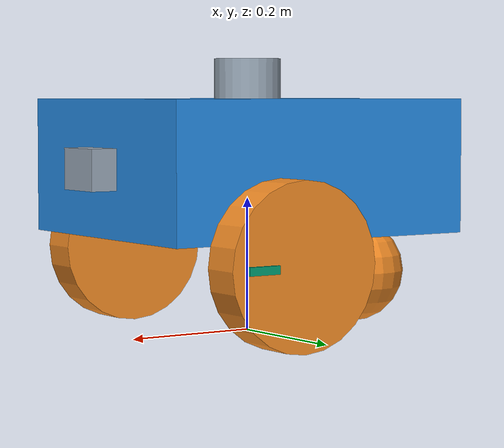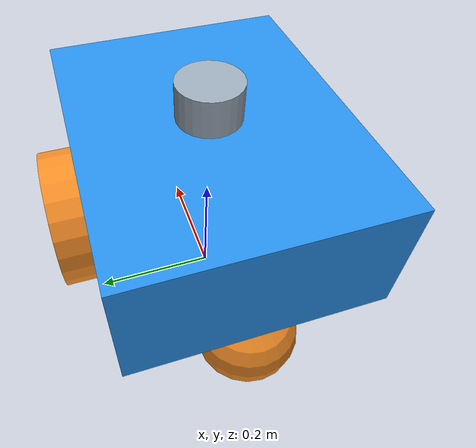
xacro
<?xml version="1.0"?>
<robot name="mobile_robot_complete"
       xmlns:xacro="http://www.ros.org/wiki/xacro">

    <!-- 声明外部参数 -->
    <xacro:arg name="show_imu_visual" default="true"/>

    <!-- 公共定义 -->
    <xacro:include filename="xacro/common/properties.xacro"/>
    <xacro:include filename="xacro/common/materials.xacro"/>
    <xacro:include filename="xacro/common/inertials.xacro"/>

    <!-- 部件模块 -->
    <xacro:include filename="xacro/chassis/base.xacro"/>
    <xacro:include filename="xacro/chassis/wheel.xacro"/>
    <xacro:include filename="xacro/chassis/caster.xacro"/>
    <xacro:include filename="xacro/sensors/sensors.xacro"/>

    <!-- 装配机器人 -->
    <xacro:robot_base/>

    <xacro:drive_wheel side="left" sign="1"/>
    <xacro:drive_wheel side="right" sign="-1"/>

    <xacro:caster/>

    <xacro:robot_sensors
        show_imu_visual="$(arg show_imu_visual)"/>

</robot>

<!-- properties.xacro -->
<robot xmlns:xacro="http://www.ros.org/wiki/xacro">

    <!-- 车身及底盘 -->
    <xacro:property name="body_length" value="0.50"/>
    <xacro:property name="body_width" value="0.40"/>
    <xacro:property name="body_height" value="0.20"/>
    <xacro:property name="body_mass" value="8.0"/>
    <xacro:property name="base_height" value="0.25"/>

    <!-- 驱动轮及旋转标记 -->
    <xacro:property name="wheel_radius" value="0.12"/>
    <xacro:property name="wheel_width" value="0.06"/>
    <xacro:property name="wheel_mass" value="0.8"/>
    <xacro:property name="wheel_x" value="0.08"/>
    <xacro:property name="wheel_y"
                    value="${body_width/2 + wheel_width/2}"/>
    <xacro:property name="wheel_z"
                    value="${wheel_radius - base_height}"/>

    <xacro:property name="wheel_mark_x" value="0.07"/>
    <xacro:property name="wheel_mark_y" value="0.032"/>
    <xacro:property name="wheel_mark_length" value="0.05"/>
    <xacro:property name="wheel_mark_width" value="0.005"/>
    <xacro:property name="wheel_mark_height" value="0.012"/>

    <!-- 后部辅助支撑轮 -->
    <xacro:property name="caster_radius" value="0.08"/>
    <xacro:property name="caster_mass" value="0.2"/>
    <xacro:property name="caster_x" value="-0.20"/>
    <xacro:property name="caster_z"
                    value="${caster_radius - base_height}"/>

    <!-- LiDAR -->
    <xacro:property name="lidar_radius" value="0.05"/>
    <xacro:property name="lidar_length" value="0.06"/>
    <xacro:property name="lidar_mass" value="0.35"/>
    <xacro:property name="lidar_z"
                    value="${body_height/2 + lidar_length/2}"/>

    <!-- Camera -->
    <xacro:property name="camera_length" value="0.04"/>
    <xacro:property name="camera_width" value="0.08"/>
    <xacro:property name="camera_height" value="0.06"/>
    <xacro:property name="camera_mass" value="0.15"/>
    <xacro:property name="camera_x"
                    value="${body_length/2 + camera_length/2}"/>

    <!-- IMU -->
    <xacro:property name="imu_length" value="0.04"/>
    <xacro:property name="imu_width" value="0.03"/>
    <xacro:property name="imu_height" value="0.01"/>
    <xacro:property name="imu_mass" value="0.02"/>
    <xacro:property name="imu_x" value="-0.05"/>

</robot>

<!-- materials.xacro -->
<robot xmlns:xacro="http://www.ros.org/wiki/xacro">

    <material name="blue">
        <color rgba="0.15 0.55 0.90 1.0"/>
    </material>

    <material name="orange">
        <color rgba="0.95 0.55 0.15 1.0"/>
    </material>

    <material name="gray">
        <color rgba="0.60 0.66 0.72 1.0"/>
    </material>

</robot>

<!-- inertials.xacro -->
<robot xmlns:xacro="http://www.ros.org/wiki/xacro">

    <!-- 均匀长方体 -->
    <xacro:macro name="box_inertial" params="mass x y z">
        <inertial>
            <origin xyz="0 0 0" rpy="0 0 0"/>
            <mass value="${mass}"/>
            <inertia
                ixx="${mass*(y*y+z*z)/12}" ixy="0" ixz="0"
                iyy="${mass*(x*x+z*z)/12}" iyz="0"
                izz="${mass*(x*x+y*y)/12}"/>
        </inertial>
    </xacro:macro>

    <!-- 均匀实心圆柱体：中心轴沿Y轴 -->
    <xacro:macro name="cylinder_y_inertial"
                 params="mass radius length">
        <inertial>
            <origin xyz="0 0 0" rpy="0 0 0"/>
            <mass value="${mass}"/>
            <inertia
                ixx="${mass*(3*radius*radius+length*length)/12}"
                ixy="0" ixz="0"
                iyy="${mass*radius*radius/2}"
                iyz="0"
                izz="${mass*(3*radius*radius+length*length)/12}"/>
        </inertial>
    </xacro:macro>

    <!-- 均匀实心圆柱体：中心轴沿Z轴 -->
    <xacro:macro name="cylinder_z_inertial"
                 params="mass radius length">
        <inertial>
            <origin xyz="0 0 0" rpy="0 0 0"/>
            <mass value="${mass}"/>
            <inertia
                ixx="${mass*(3*radius*radius+length*length)/12}"
                ixy="0" ixz="0"
                iyy="${mass*(3*radius*radius+length*length)/12}"
                iyz="0"
                izz="${mass*radius*radius/2}"/>
        </inertial>
    </xacro:macro>

    <!-- 均匀实心球 -->
    <xacro:macro name="sphere_inertial" params="mass radius">
        <inertial>
            <origin xyz="0 0 0" rpy="0 0 0"/>
            <mass value="${mass}"/>
            <inertia
                ixx="${2*mass*radius*radius/5}" ixy="0" ixz="0"
                iyy="${2*mass*radius*radius/5}" iyz="0"
                izz="${2*mass*radius*radius/5}"/>
        </inertial>
    </xacro:macro>

</robot>

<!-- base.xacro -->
<robot xmlns:xacro="http://www.ros.org/wiki/xacro">

    <xacro:macro name="robot_base">
        <!-- 虚拟地面参考坐标系 -->
        <link name="base_footprint"/>

        <!-- 车身 -->
        <link name="base_link">
            <visual>
                <geometry>
                    <box size="${body_length} ${body_width} ${body_height}"/>
                </geometry>
                <material name="blue"/>
            </visual>

            <collision>
                <geometry>
                    <box size="${body_length} ${body_width} ${body_height}"/>
                </geometry>
            </collision>

            <xacro:box_inertial
                mass="${body_mass}"
                x="${body_length}"
                y="${body_width}"
                z="${body_height}"/>
        </link>

        <joint name="base_footprint_joint" type="fixed">
            <parent link="base_footprint"/>
            <child link="base_link"/>
            <origin xyz="0 0 ${base_height}"/>
        </joint>
    </xacro:macro>
</robot>

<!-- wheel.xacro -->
<robot xmlns:xacro="http://www.ros.org/wiki/xacro">

    <xacro:macro name="drive_wheel" params="side sign">
        <link name="${side}_wheel_link">
            <!-- 车轮主体 -->
            <visual>
                <origin rpy="1.5708 0 0"/>
                <geometry>
                    <cylinder
                        radius="${wheel_radius}"
                        length="${wheel_width}"/>
                </geometry>
                <material name="orange"/>
            </visual>

            <!-- 车轮外侧旋转标记 -->
            <visual>
                <origin
                    xyz="${wheel_mark_x} ${float(sign)*wheel_mark_y} 0"/>
                <geometry>
                    <box
                        size="${wheel_mark_length} ${wheel_mark_width} ${wheel_mark_height}"/>
                </geometry>
            </visual>

            <collision>
                <origin rpy="1.5708 0 0"/>
                <geometry>
                    <cylinder
                        radius="${wheel_radius}"
                        length="${wheel_width}"/>
                </geometry>
            </collision>

            <xacro:cylinder_y_inertial
                mass="${wheel_mass}"
                radius="${wheel_radius}"
                length="${wheel_width}"/>
        </link>

        <joint name="${side}_wheel_joint" type="continuous">
            <parent link="base_link"/>
            <child link="${side}_wheel_link"/>
            <origin
                xyz="${wheel_x} ${float(sign)*wheel_y} ${wheel_z}"/>
            <axis xyz="0 1 0"/>
        </joint>
    </xacro:macro>
</robot>

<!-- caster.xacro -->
<robot xmlns:xacro="http://www.ros.org/wiki/xacro">

    <xacro:macro name="caster">
        <link name="caster_link">
            <visual>
                <geometry>
                    <sphere radius="${caster_radius}"/>
                </geometry>
                <material name="orange"/>
            </visual>

            <collision>
                <geometry>
                    <sphere radius="${caster_radius}"/>
                </geometry>
            </collision>

            <xacro:sphere_inertial
                mass="${caster_mass}"
                radius="${caster_radius}"/>
        </link>

        <joint name="caster_joint" type="fixed">
            <parent link="base_link"/>
            <child link="caster_link"/>
            <origin xyz="${caster_x} 0 ${caster_z}"/>
        </joint>
    </xacro:macro>
</robot>

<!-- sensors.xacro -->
<robot xmlns:xacro="http://www.ros.org/wiki/xacro">

    <!-- 传感器安装宏 -->
    <xacro:macro name="sensor_mount" params="name *origin">
        <joint name="${name}_joint" type="fixed">
            <parent link="base_link"/>
            <child link="${name}_link"/>
            <xacro:insert_block name="origin"/>
        </joint>
    </xacro:macro>

    <!-- 传感器模块 -->
    <xacro:macro name="robot_sensors" params="show_imu_visual">
        <!-- LiDAR -->
        <link name="lidar_link">
            <visual>
                <geometry>
                    <cylinder
                        radius="${lidar_radius}"
                        length="${lidar_length}"/>
                </geometry>
                <material name="gray"/>
            </visual>

            <collision>
                <geometry>
                    <cylinder
                        radius="${lidar_radius}"
                        length="${lidar_length}"/>
                </geometry>
            </collision>

            <xacro:cylinder_z_inertial
                mass="${lidar_mass}"
                radius="${lidar_radius}"
                length="${lidar_length}"/>
        </link>

        <xacro:sensor_mount name="lidar">
            <origin xyz="0 0 ${lidar_z}"/>
        </xacro:sensor_mount>

        <!-- Camera -->
        <link name="camera_link">
            <visual>
                <geometry>
                    <box
                        size="${camera_length} ${camera_width} ${camera_height}"/>
                </geometry>
                <material name="gray"/>
            </visual>

            <collision>
                <geometry>
                    <box
                        size="${camera_length} ${camera_width} ${camera_height}"/>
                </geometry>
            </collision>

            <xacro:box_inertial
                mass="${camera_mass}"
                x="${camera_length}"
                y="${camera_width}"
                z="${camera_height}"/>
        </link>

        <xacro:sensor_mount name="camera">
            <origin xyz="${camera_x} 0 0"/>
        </xacro:sensor_mount>

        <!-- IMU -->
        <link name="imu_link">
            <xacro:if value="${show_imu_visual}">
                <visual>
                    <geometry>
                        <box
                            size="${imu_length} ${imu_width} ${imu_height}"/>
                    </geometry>
                    <material name="gray"/>
                </visual>
            </xacro:if>

            <xacro:box_inertial
                mass="${imu_mass}"
                x="${imu_length}"
                y="${imu_width}"
                z="${imu_height}"/>
        </link>

        <xacro:sensor_mount name="imu">
            <origin xyz="${imu_x} 0 0"/>
        </xacro:sensor_mount>
    </xacro:macro>
</robot>
